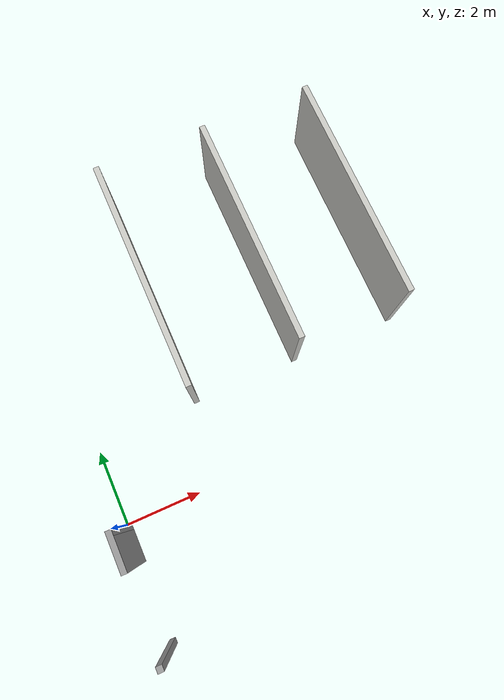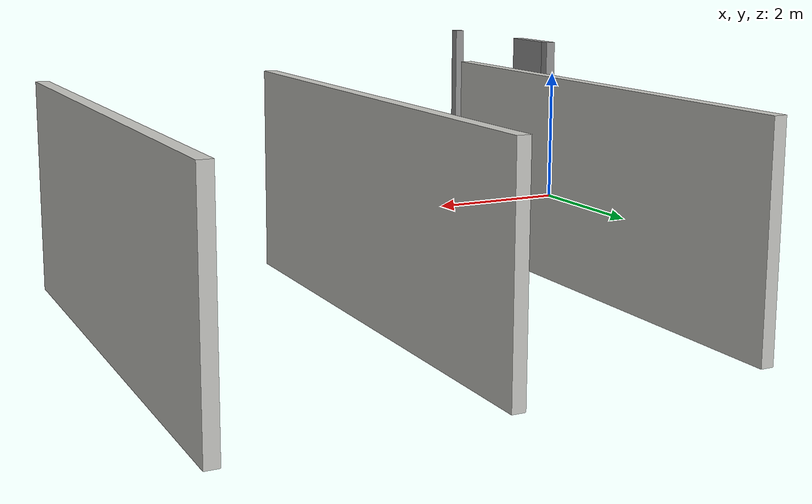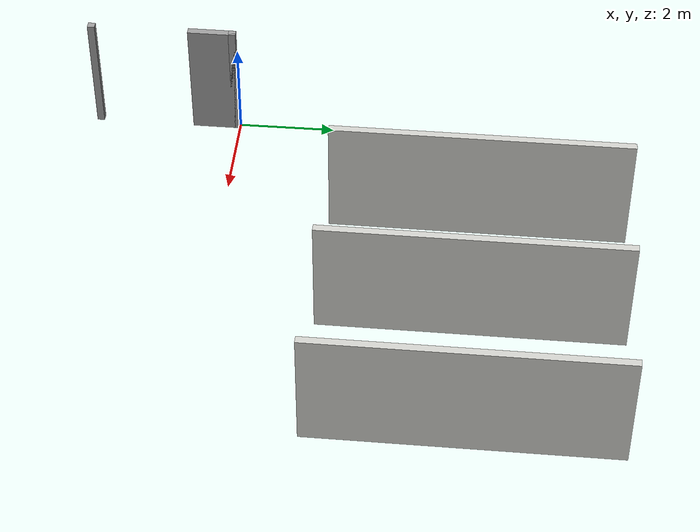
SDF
<?xml version='1.0'?>
<sdf version='1.7'>
  <model name='Imav_new_world'>
    <pose>4.29006 2.54558 0 0 -0 0</pose>
    <link name='Wall_16'>
      <collision name='Wall_16_Collision'>
        <geometry>
          <box>
            <size>6 0.15 2.5</size>
          </box>
        </geometry>
        <pose>0 0 1.25 0 -0 0</pose>
      </collision>
      <visual name='Wall_16_Visual'>
        <pose>0 0 1.25 0 -0 0</pose>
        <geometry>
          <box>
            <size>6 0.15 2.5</size>
          </box>
        </geometry>
        <material>
          <script>
            <uri>file://media/materials/scripts/gazebo.material</uri>
            <name>Gazebo/CeilingTiled</name>
          </script>
          <ambient>0.592157 0.74902 0.909804 1</ambient>
        </material>
        <meta>
          <layer>0</layer>
        </meta>
      </visual>
      <pose>-1.43994 2.66058 0 0 -0 -1.5708</pose>
    </link>
    <link name='Wall_18'>
      <collision name='Wall_18_Collision'>
        <geometry>
          <box>
            <size>6 0.15 2.5</size>
          </box>
        </geometry>
        <pose>0 0 1.25 0 -0 0</pose>
      </collision>
      <visual name='Wall_18_Visual'>
        <pose>0 0 1.25 0 -0 0</pose>
        <geometry>
          <box>
            <size>6 0.15 2.5</size>
          </box>
        </geometry>
        <material>
          <script>
            <uri>file://media/materials/scripts/gazebo.material</uri>
            <name>Gazebo/CeilingTiled</name>
          </script>
          <ambient>0.74902 0.74902 0.74902 1</ambient>
        </material>
        <meta>
          <layer>0</layer>
        </meta>
      </visual>
      <pose>1.41006 2.66058 0 0 -0 1.5708</pose>
    </link>
    <link name='Wall_2'>
      <collision name='Wall_2_Collision'>
        <geometry>
          <box>
            <size>0.15 0.15 2.5</size>
          </box>
        </geometry>
        <pose>0 0 1.25 0 -0 0</pose>
      </collision>
      <visual name='Wall_2_Visual'>
        <pose>0 0 1.25 0 -0 0</pose>
        <geometry>
          <box>
            <size>0.15 0.15 2.5</size>
          </box>
        </geometry>
        <material>
          <script>
            <uri>file://media/materials/scripts/gazebo.material</uri>
            <name>Gazebo/Grey</name>
          </script>
          <ambient>1 1 1 1</ambient>
        </material>
        <meta>
          <layer>0</layer>
        </meta>
      </visual>
      <pose>-4.26006 -5.58559 0 0 -0 0</pose>
    </link>
    <link name='Wall_20'>
      <collision name='Wall_20_Collision'>
        <geometry>
          <box>
            <size>6 0.15 2.5</size>
          </box>
        </geometry>
        <pose>0 0 1.25 0 -0 0</pose>
      </collision>
      <visual name='Wall_20_Visual'>
        <pose>0 0 1.25 0 -0 0</pose>
        <geometry>
          <box>
            <size>6 0.15 2.5</size>
          </box>
        </geometry>
        <material>
          <script>
            <uri>file://media/materials/scripts/gazebo.material</uri>
            <name>Gazebo/CeilingTiled</name>
          </script>
          <ambient>1 0 0 1</ambient>
        </material>
        <meta>
          <layer>0</layer>
        </meta>
      </visual>
      <pose>4.26006 2.66058 0 0 -0 -1.5708</pose>
    </link>
    <link name='Wall_5'>
      <collision name='Wall_5_Collision'>
        <geometry>
          <box>
            <size>1 0.15 2.5</size>
          </box>
        </geometry>
        <pose>0 0 1.25 0 -0 0</pose>
      </collision>
      <visual name='Wall_5_Visual'>
        <pose>0 0 1.25 0 -0 0</pose>
        <geometry>
          <box>
            <size>1 0.15 2.5</size>
          </box>
        </geometry>
        <material>
          <script>
            <uri>file://media/materials/scripts/gazebo.material</uri>
            <name>Gazebo/Grey</name>
          </script>
          <ambient>1 1 1 1</ambient>
        </material>
        <meta>
          <layer>0</layer>
        </meta>
      </visual>
      <pose>-4.26006 -3.06059 0 0 -0 1.5708</pose>
    </link>
    <link name='Wall_6'>
      <collision name='Wall_6_Collision'>
        <geometry>
          <box>
            <size>0.15 0.15 2.5</size>
          </box>
        </geometry>
        <pose>0 0 1.25 0 -0 0</pose>
      </collision>
      <visual name='Wall_6_Visual'>
        <pose>0 0 1.25 0 -0 0</pose>
        <geometry>
          <box>
            <size>0.15 0.15 2.5</size>
          </box>
        </geometry>
        <material>
          <script>
            <uri>file://media/materials/scripts/gazebo.material</uri>
            <name>Gazebo/Grey</name>
          </script>
          <ambient>1 1 1 1</ambient>
        </material>
        <meta>
          <layer>0</layer>
        </meta>
      </visual>
      <pose>-4.26006 -2.63558 0 0 -0 0</pose>
    </link>
    <static>1</static>
  </model>
</sdf>
